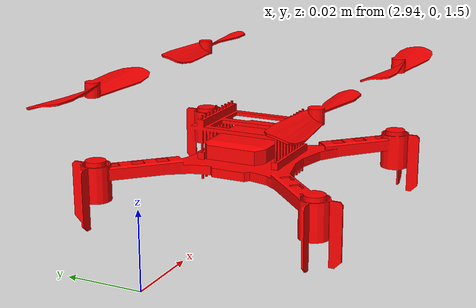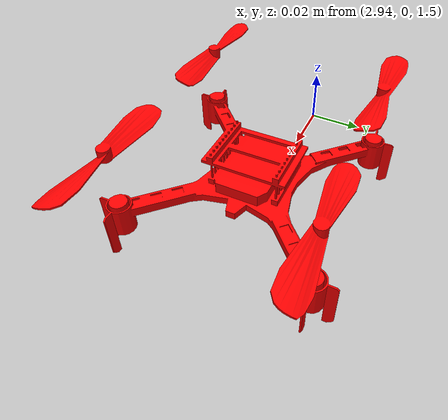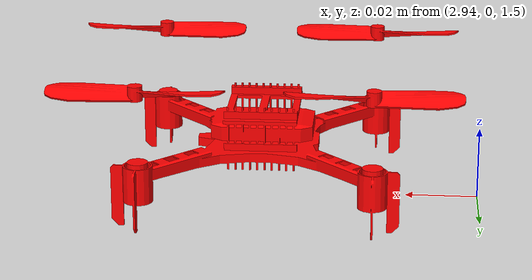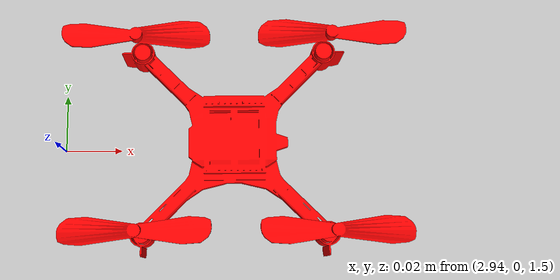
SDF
<sdf version="1.9">
 <world name="pursuit_world">
  <physics name="1ms" type="ignore">
   <max_step_size>0.001</max_step_size>
   <real_time_factor>1.0</real_time_factor>
  </physics>
  <plugin filename="gz-sim-physics-system" name="gz::sim::systems::Physics"/>
  <plugin filename="gz-sim-sensors-system" name="gz::sim::systems::Sensors">
   <render_engine>ogre2</render_engine>
  </plugin>
  <plugin filename="gz-sim-user-commands-system" name="gz::sim::systems::UserCommands"/>
  <plugin filename="gz-sim-scene-broadcaster-system" name="gz::sim::systems::SceneBroadcaster"/>
  <plugin filename="gz-sim-imu-system" name="gz::sim::systems::Imu"/>
  <plugin filename="gz-sim-navsat-system" name="gz::sim::systems::NavSat"/>
  <plugin filename="gz-sim-contact-system" name="gz::sim::systems::Contact"/>
  <light type="directional" name="sun">
   <pose>0 0 10 0 0 0</pose>
   <diffuse>1 1 1 1</diffuse>
   <specular>0.5 0.5 0.5 1</specular>
   <direction>-0.5 0.1 -0.9</direction>
  </light>
  <model name="ground_plane">
   <static>true</static>
   <link name="link">
    <collision name="collision"><geometry><plane><normal>0 0 1</normal></plane></geometry></collision>
    <visual name="visual">
     <geometry><plane><normal>0 0 1</normal><size>100 100</size></plane></geometry>
     <material><ambient>0.4 0.6 0.4 1</ambient><diffuse>0.4 0.6 0.4 1</diffuse></material>
    </visual>
   </link>
  </model>
  <include><uri>model://crazyflie_red</uri><name>crazyflie</name><pose>3 0 1.5 0 0 0</pose></include>
 </world>
</sdf>

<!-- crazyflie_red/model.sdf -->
<sdf version="1.8">
  <model name="crazyflie_red">
    <static>true</static>
    <link name="crazyflie/body">
      <pose>0 0 0.017425 0 0 0</pose>
      <inertial>
        <mass>0.025</mass>
        <inertia>
          <ixx>16.571710E-06</ixx>
          <iyy>16.655602E-06</iyy>
          <izz>29.261652E-06</izz>
        </inertia>
      </inertial>

      <collision name="body_collision">
        <geometry>
          <box><size>0.10 0.10 0.035</size></box>
        </geometry>
      </collision>

      <visual name="body_visual">
        <geometry>
          <mesh>
            <uri>/home/masum/drone_pursuit_ws/src/drone_pursuit/models/meshes/collada_files/cf2_assembly.dae</uri>
            <scale>1 1 1</scale>
          </mesh>
        </geometry>
        <material>
          <ambient>1 0 0 1</ambient>
          <diffuse>1 0 0 1</diffuse>
          <specular>0.3 0 0 1</specular>
        </material>
      </visual>

      <visual name="prop_ccw_0">
        <pose>0.031 -0.031 0.021 0 0 0</pose>
        <geometry>
          <mesh>
            <uri>/home/masum/drone_pursuit_ws/src/drone_pursuit/models/meshes/collada_files/ccw_prop.dae</uri>
          </mesh>
        </geometry>
        <material>
          <ambient>1 0 0 1</ambient>
          <diffuse>1 0 0 1</diffuse>
        </material>
      </visual>

      <visual name="prop_cw_0">
        <pose>0.031 0.031 0.021 0 0 0</pose>
        <geometry>
          <mesh>
            <uri>/home/masum/drone_pursuit_ws/src/drone_pursuit/models/meshes/collada_files/cw_prop.dae</uri>
          </mesh>
        </geometry>
        <material>
          <ambient>1 0 0 1</ambient>
          <diffuse>1 0 0 1</diffuse>
        </material>
      </visual>

      <visual name="prop_ccw_1">
        <pose>-0.031 0.031 0.021 0 0 0</pose>
        <geometry>
          <mesh>
            <uri>/home/masum/drone_pursuit_ws/src/drone_pursuit/models/meshes/collada_files/ccw_prop.dae</uri>
          </mesh>
        </geometry>
        <material>
          <ambient>1 0 0 1</ambient>
          <diffuse>1 0 0 1</diffuse>
        </material>
      </visual>

      <visual name="prop_cw_1">
        <pose>-0.031 -0.031 0.021 0 0 0</pose>
        <geometry>
          <mesh>
            <uri>/home/masum/drone_pursuit_ws/src/drone_pursuit/models/meshes/collada_files/cw_prop.dae</uri>
          </mesh>
        </geometry>
        <material>
          <ambient>1 0 0 1</ambient>
          <diffuse>1 0 0 1</diffuse>
        </material>
      </visual>

    </link>
  </model>
</sdf>
